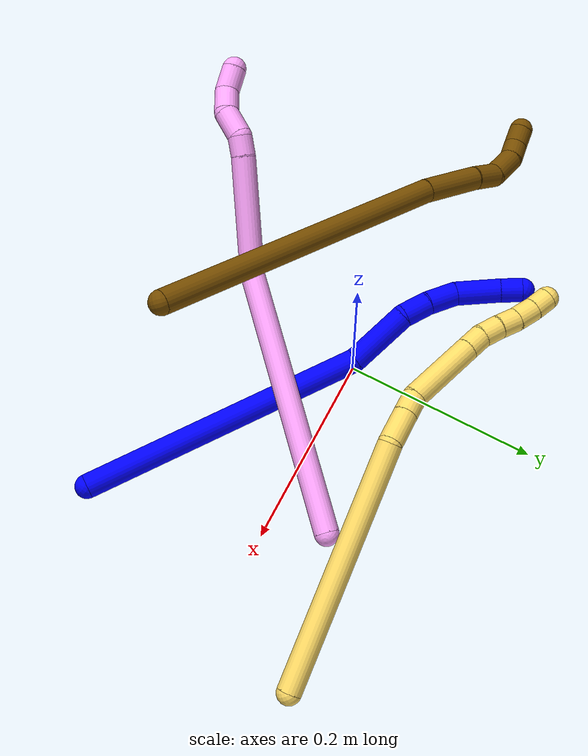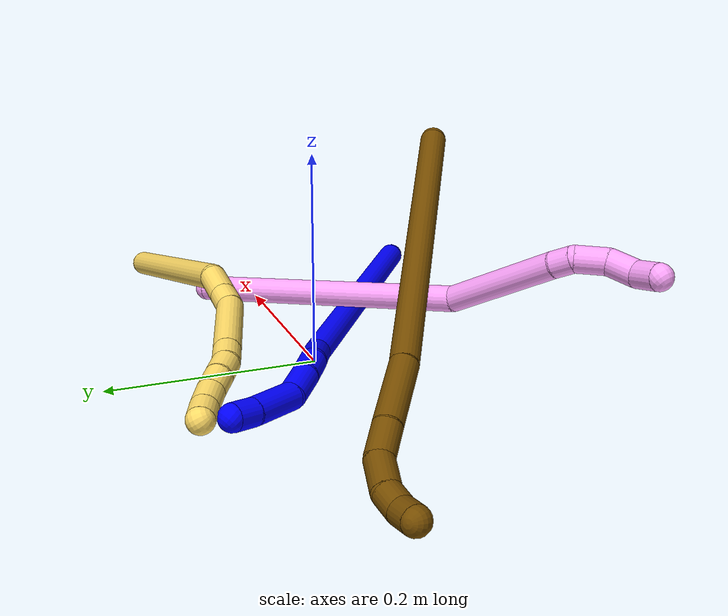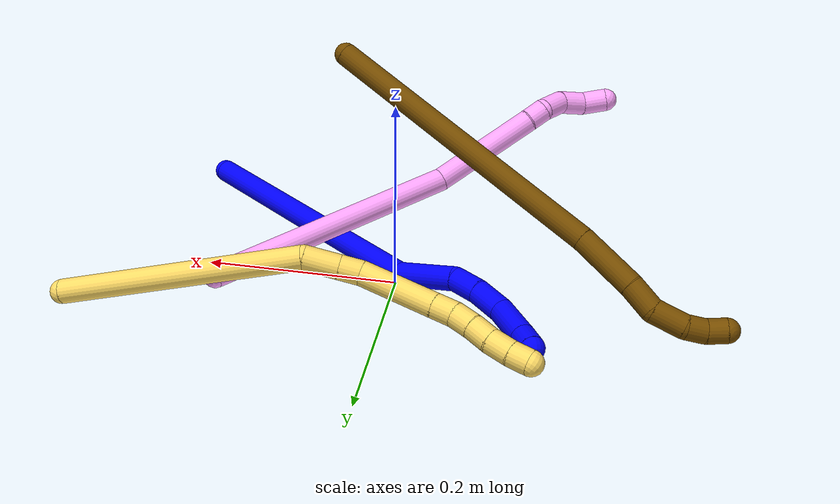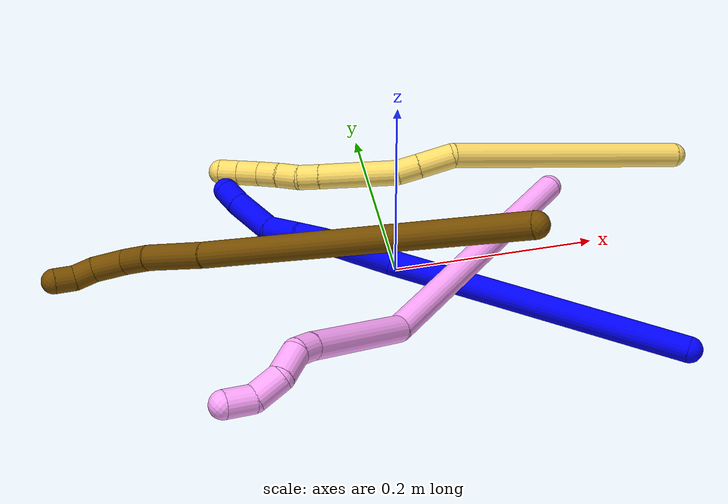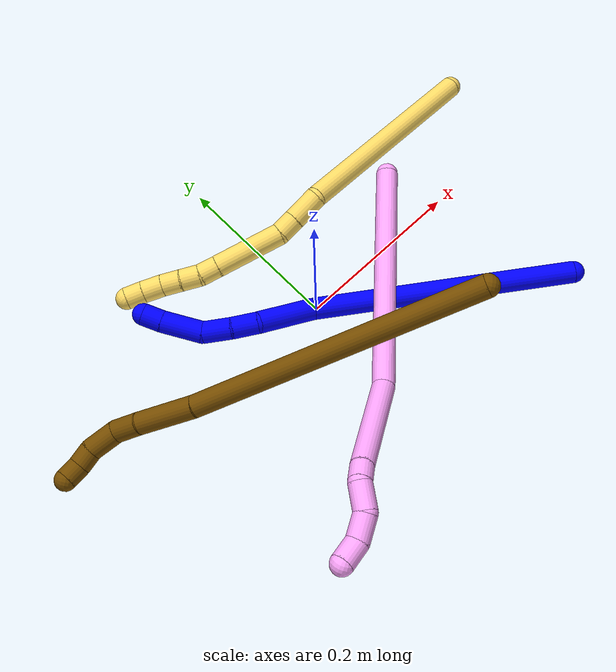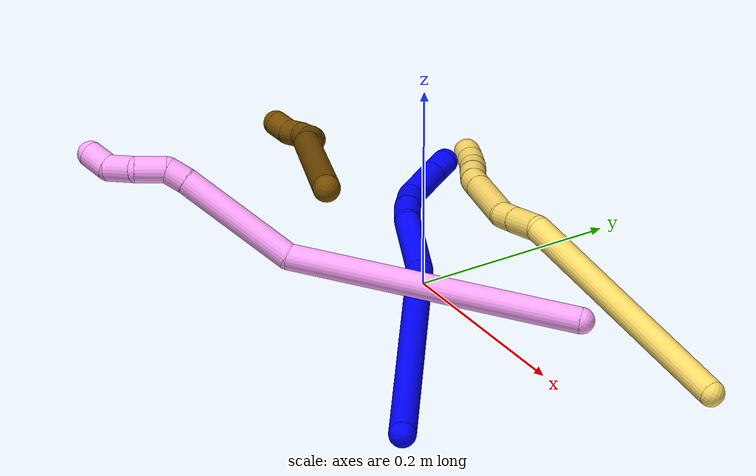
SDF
<sdf version="1.7">
 <world name="default">
  <model name="bin">
   <static>1</static>
   <link name="bottom">
    <collision name="collision-bottom">
     <pose>0 0 -0.01 0 -0 0</pose>
     <geometry><box><size>0.8 0.6 0.02</size></box></geometry>
     <surface>
      <friction><ode><mu>100</mu><mu2>100</mu2></ode></friction>
      <contact><collide_bitmask>65535</collide_bitmask></contact>
     </surface>
    </collision>
   </link>
   <link name="west_wall">
    <collision name="collision-west_wall">
     <pose>-0.41 0 0.1 0 -0 0</pose>
     <geometry><box><size>0.02 0.6 0.2</size></box></geometry>
     <surface>
      <friction><ode><mu>100</mu><mu2>100</mu2></ode></friction>
      <contact><collide_bitmask>65535</collide_bitmask></contact>
     </surface>
    </collision>
   </link>
   <link name="east_wall">
    <collision name="collision-east_wall">
     <pose>0.41 0 0.1 0 -0 0</pose>
     <geometry><box><size>0.02 0.6 0.2</size></box></geometry>
     <surface>
      <friction><ode><mu>100</mu><mu2>100</mu2></ode></friction>
      <contact><collide_bitmask>65535</collide_bitmask></contact>
     </surface>
    </collision>
   </link>
   <link name="south_wall">
    <collision name="collision-south_wall">
     <pose>0 -0.31 0.1 0 -0 0</pose>
     <geometry><box><size>0.8 0.02 0.2</size></box></geometry>
     <surface>
      <friction><ode><mu>100</mu><mu2>100</mu2></ode></friction>
      <contact><collide_bitmask>65535</collide_bitmask></contact>
     </surface>
    </collision>
   </link>
   <link name="north_wall">
    <collision name="collision-north_wall">
     <pose>0 0.31 0.1 0 -0 0</pose>
     <geometry><box><size>0.8 0.02 0.2</size></box></geometry>
     <surface>
      <friction><ode><mu>100</mu><mu2>100</mu2></ode></friction>
      <contact><collide_bitmask>65535</collide_bitmask></contact>
     </surface>
    </collision>
   </link>
  </model>
  <model name="1">
   <static>0</static>
   <link name="1">
    <collision name="collision-cylinder-e_1_1_4">
     <pose>-0.101539 0.06077 -0.092235 -2.55901 -0.743365 1.83029</pose>
     <geometry><cylinder><radius>0.0125</radius><length>0.300071</length></cylinder></geometry>
     <surface>
      <friction><ode><mu>1.16</mu><mu2>1.16</mu2><slip1>0</slip1><slip2>0</slip2></ode></friction>
      <contact><ode><kp>1e+06</kp><kd>1</kd><max_vel>0</max_vel><min_depth>0.001</min_depth></ode></contact>
     </surface>
    </collision>
    <visual name="visual-cylinder-e_1_1_4">
     <pose>-0.101539 0.06077 -0.092235 -2.55901 -0.743365 1.83029</pose>
     <geometry><cylinder><radius>0.0125</radius><length>0.300071</length></cylinder></geometry>
     <material><ambient>0 0 1 1</ambient></material>
    </visual>
    <collision name="collision-cylinder-e_2_4_5">
     <pose>-0.230904 0.138099 -0.194438 -2.11263 -0.963716 1.49313</pose>
     <geometry><cylinder><radius>0.0125</radius><length>0.067759</length></cylinder></geometry>
     <surface>
      <friction><ode><mu>1.16</mu><mu2>1.16</mu2><slip1>0</slip1><slip2>0</slip2></ode></friction>
      <contact><ode><kp>1e+06</kp><kd>1</kd><max_vel>0</max_vel><min_depth>0.001</min_depth></ode></contact>
     </surface>
    </collision>
    <visual name="visual-cylinder-e_2_4_5">
     <pose>-0.230904 0.138099 -0.194438 -2.11263 -0.963716 1.49313</pose>
     <geometry><cylinder><radius>0.0125</radius><length>0.067759</length></cylinder></geometry>
     <material><ambient>0 0 1 1</ambient></material>
    </visual>
    <collision name="collision-cylinder-e_3_5_6">
     <pose>-0.269127 0.159767 -0.2133 -2.6203 -0.792154 2.00609</pose>
     <geometry><cylinder><radius>0.0125</radius><length>0.029211</length></cylinder></geometry>
     <surface>
      <friction><ode><mu>1.16</mu><mu2>1.16</mu2><slip1>0</slip1><slip2>0</slip2></ode></friction>
      <contact><ode><kp>1e+06</kp><kd>1</kd><max_vel>0</max_vel><min_depth>0.001</min_depth></ode></contact>
     </surface>
    </collision>
    <visual name="visual-cylinder-e_3_5_6">
     <pose>-0.269127 0.159767 -0.2133 -2.6203 -0.792154 2.00609</pose>
     <geometry><cylinder><radius>0.0125</radius><length>0.029211</length></cylinder></geometry>
     <material><ambient>0 0 1 1</ambient></material>
    </visual>
    <collision name="collision-cylinder-e_4_6_7">
     <pose>-0.289685 0.169967 -0.234075 -2.73665 -0.666235 2.07067</pose>
     <geometry><cylinder><radius>0.0125</radius><length>0.032881</length></cylinder></geometry>
     <surface>
      <friction><ode><mu>1.16</mu><mu2>1.16</mu2><slip1>0</slip1><slip2>0</slip2></ode></friction>
      <contact><ode><kp>1e+06</kp><kd>1</kd><max_vel>0</max_vel><min_depth>0.001</min_depth></ode></contact>
     </surface>
    </collision>
    <visual name="visual-cylinder-e_4_6_7">
     <pose>-0.289685 0.169967 -0.234075 -2.73665 -0.666235 2.07067</pose>
     <geometry><cylinder><radius>0.0125</radius><length>0.032881</length></cylinder></geometry>
     <material><ambient>0 0 1 1</ambient></material>
    </visual>
    <collision name="collision-cylinder-e_5_7_8">
     <pose>-0.307754 0.18938 -0.263089 -2.44543 -0.340353 0.884564</pose>
     <geometry><cylinder><radius>0.0125</radius><length>0.047382</length></cylinder></geometry>
     <surface>
      <friction><ode><mu>1.16</mu><mu2>1.16</mu2><slip1>0</slip1><slip2>0</slip2></ode></friction>
      <contact><ode><kp>1e+06</kp><kd>1</kd><max_vel>0</max_vel><min_depth>0.001</min_depth></ode></contact>
     </surface>
    </collision>
    <visual name="visual-cylinder-e_5_7_8">
     <pose>-0.307754 0.18938 -0.263089 -2.44543 -0.340353 0.884564</pose>
     <geometry><cylinder><radius>0.0125</radius><length>0.047382</length></cylinder></geometry>
     <material><ambient>0 0 1 1</ambient></material>
    </visual>
    <collision name="collision-cylinder-e_6_8_2">
     <pose>-0.318612 0.211371 -0.288052 -2.36628 -0.262926 0.62635</pose>
     <geometry><cylinder><radius>0.0125</radius><length>0.022697</length></cylinder></geometry>
     <surface>
      <friction><ode><mu>1.16</mu><mu2>1.16</mu2><slip1>0</slip1><slip2>0</slip2></ode></friction>
      <contact><ode><kp>1e+06</kp><kd>1</kd><max_vel>0</max_vel><min_depth>0.001</min_depth></ode></contact>
     </surface>
    </collision>
    <visual name="visual-cylinder-e_6_8_2">
     <pose>-0.318612 0.211371 -0.288052 -2.36628 -0.262926 0.62635</pose>
     <geometry><cylinder><radius>0.0125</radius><length>0.022697</length></cylinder></geometry>
     <material><ambient>0 0 1 1</ambient></material>
    </visual>
    <collision name="collision-sphere-2">
     <pose>-0.321562 0.219041 -0.295878 0 -0 0</pose>
     <geometry><sphere><radius>0.0125</radius></sphere></geometry>
     <surface>
      <friction><ode><mu>1.16</mu><mu2>1.16</mu2><slip1>0</slip1><slip2>0</slip2></ode></friction>
      <contact><ode><kp>1e+06</kp><kd>1</kd><max_vel>0</max_vel><min_depth>0.001</min_depth></ode></contact>
     </surface>
    </collision>
    <visual name="visual-sphere-2">
     <pose>-0.321562 0.219041 -0.295878 0 -0 0</pose>
     <geometry><sphere><radius>0.0125</radius></sphere></geometry>
     <material><ambient>0 0 1 1</ambient></material>
    </visual>
    <collision name="collision-sphere-4">
     <pose>-0.203078 0.121541 -0.18447 0 -0 0</pose>
     <geometry><sphere><radius>0.0125</radius></sphere></geometry>
     <surface>
      <friction><ode><mu>1.16</mu><mu2>1.16</mu2><slip1>0</slip1><slip2>0</slip2></ode></friction>
      <contact><ode><kp>1e+06</kp><kd>1</kd><max_vel>0</max_vel><min_depth>0.001</min_depth></ode></contact>
     </surface>
    </collision>
    <visual name="visual-sphere-4">
     <pose>-0.203078 0.121541 -0.18447 0 -0 0</pose>
     <geometry><sphere><radius>0.0125</radius></sphere></geometry>
     <material><ambient>0 0 1 1</ambient></material>
    </visual>
    <collision name="collision-sphere-1">
     <geometry><sphere><radius>0.0125</radius></sphere></geometry>
     <surface>
      <friction><ode><mu>1.16</mu><mu2>1.16</mu2><slip1>0</slip1><slip2>0</slip2></ode></friction>
      <contact><ode><kp>1e+06</kp><kd>1</kd><max_vel>0</max_vel><min_depth>0.001</min_depth></ode></contact>
     </surface>
    </collision>
    <visual name="visual-sphere-1">
     <geometry><sphere><radius>0.0125</radius></sphere></geometry>
     <material><ambient>0 0 1 1</ambient></material>
    </visual>
    <collision name="collision-sphere-8">
     <pose>-0.315662 0.2037 -0.280225 0 -0 0</pose>
     <geometry><sphere><radius>0.0125</radius></sphere></geometry>
     <surface>
      <friction><ode><mu>1.16</mu><mu2>1.16</mu2><slip1>0</slip1><slip2>0</slip2></ode></friction>
      <contact><ode><kp>1e+06</kp><kd>1</kd><max_vel>0</max_vel><min_depth>0.001</min_depth></ode></contact>
     </surface>
    </collision>
    <visual name="visual-sphere-8">
     <pose>-0.315662 0.2037 -0.280225 0 -0 0</pose>
     <geometry><sphere><radius>0.0125</radius></sphere></geometry>
     <material><ambient>0 0 1 1</ambient></material>
    </visual>
    <collision name="collision-sphere-5">
     <pose>-0.25873 0.154658 -0.204405 0 -0 0</pose>
     <geometry><sphere><radius>0.0125</radius></sphere></geometry>
     <surface>
      <friction><ode><mu>1.16</mu><mu2>1.16</mu2><slip1>0</slip1><slip2>0</slip2></ode></friction>
      <contact><ode><kp>1e+06</kp><kd>1</kd><max_vel>0</max_vel><min_depth>0.001</min_depth></ode></contact>
     </surface>
    </collision>
    <visual name="visual-sphere-5">
     <pose>-0.25873 0.154658 -0.204405 0 -0 0</pose>
     <geometry><sphere><radius>0.0125</radius></sphere></geometry>
     <material><ambient>0 0 1 1</ambient></material>
    </visual>
    <collision name="collision-sphere-6">
     <pose>-0.279524 0.164875 -0.222195 0 -0 0</pose>
     <geometry><sphere><radius>0.0125</radius></sphere></geometry>
     <surface>
      <friction><ode><mu>1.16</mu><mu2>1.16</mu2><slip1>0</slip1><slip2>0</slip2></ode></friction>
      <contact><ode><kp>1e+06</kp><kd>1</kd><max_vel>0</max_vel><min_depth>0.001</min_depth></ode></contact>
     </surface>
    </collision>
    <visual name="visual-sphere-6">
     <pose>-0.279524 0.164875 -0.222195 0 -0 0</pose>
     <geometry><sphere><radius>0.0125</radius></sphere></geometry>
     <material><ambient>0 0 1 1</ambient></material>
    </visual>
    <collision name="collision-sphere-7">
     <pose>-0.299845 0.175059 -0.245954 0 -0 0</pose>
     <geometry><sphere><radius>0.0125</radius></sphere></geometry>
     <surface>
      <friction><ode><mu>1.16</mu><mu2>1.16</mu2><slip1>0</slip1><slip2>0</slip2></ode></friction>
      <contact><ode><kp>1e+06</kp><kd>1</kd><max_vel>0</max_vel><min_depth>0.001</min_depth></ode></contact>
     </surface>
    </collision>
    <visual name="visual-sphere-7">
     <pose>-0.299845 0.175059 -0.245954 0 -0 0</pose>
     <geometry><sphere><radius>0.0125</radius></sphere></geometry>
     <material><ambient>0 0 1 1</ambient></material>
    </visual>
    <inertial>
     <pose>-0.17063 0.103238 -0.147566 0 -0 0</pose>
     <mass>0.5</mass>
     <inertia><ixx>0.001194</ixx><ixy>0</ixy><ixz>0</ixz><iyy>0.002977</iyy><iyz>0</iyz><izz>0.0006</izz></inertia>
    </inertial>
   </link>
   <pose>0.239026 -0.174925 0.015236 0.89482 0.082635 0.203299</pose>
  </model>
  <model name="4">
   <static>0</static>
   <link name="4">
    <collision name="collision-cylinder-e_1_1_4">
     <pose>-0.076669 -0.07346 0.08881 0.691082 -0.586996 -0.216741</pose>
     <geometry><cylinder><radius>0.0125</radius><length>0.276851</length></cylinder></geometry>
     <surface>
      <friction><ode><mu>1.16</mu><mu2>1.16</mu2><slip1>0</slip1><slip2>0</slip2></ode></friction>
      <contact><ode><kp>1e+06</kp><kd>1</kd><max_vel>0</max_vel><min_depth>0.001</min_depth></ode></contact>
     </surface>
    </collision>
    <visual name="visual-cylinder-e_1_1_4">
     <pose>-0.076669 -0.07346 0.08881 0.691082 -0.586996 -0.216741</pose>
     <geometry><cylinder><radius>0.0125</radius><length>0.276851</length></cylinder></geometry>
     <material><ambient>1 0.65098 0.996078 1</ambient></material>
    </visual>
    <collision name="collision-cylinder-e_2_4_5">
     <pose>-0.177524 -0.195667 0.200281 1.13564 -0.422791 -0.272096</pose>
     <geometry><cylinder><radius>0.0125</radius><length>0.117896</length></cylinder></geometry>
     <surface>
      <friction><ode><mu>1.16</mu><mu2>1.16</mu2><slip1>0</slip1><slip2>0</slip2></ode></friction>
      <contact><ode><kp>1e+06</kp><kd>1</kd><max_vel>0</max_vel><min_depth>0.001</min_depth></ode></contact>
     </surface>
    </collision>
    <visual name="visual-cylinder-e_2_4_5">
     <pose>-0.177524 -0.195667 0.200281 1.13564 -0.422791 -0.272096</pose>
     <geometry><cylinder><radius>0.0125</radius><length>0.117896</length></cylinder></geometry>
     <material><ambient>1 0.65098 0.996078 1</ambient></material>
    </visual>
    <collision name="collision-cylinder-e_3_5_6">
     <pose>-0.206815 -0.252189 0.227202 1.06961 -0.522432 -0.314113</pose>
     <geometry><cylinder><radius>0.0125</radius><length>0.02046</length></cylinder></geometry>
     <surface>
      <friction><ode><mu>1.16</mu><mu2>1.16</mu2><slip1>0</slip1><slip2>0</slip2></ode></friction>
      <contact><ode><kp>1e+06</kp><kd>1</kd><max_vel>0</max_vel><min_depth>0.001</min_depth></ode></contact>
     </surface>
    </collision>
    <visual name="visual-cylinder-e_3_5_6">
     <pose>-0.206815 -0.252189 0.227202 1.06961 -0.522432 -0.314113</pose>
     <geometry><cylinder><radius>0.0125</radius><length>0.02046</length></cylinder></geometry>
     <material><ambient>1 0.65098 0.996078 1</ambient></material>
    </visual>
    <collision name="collision-cylinder-e_4_6_7">
     <pose>-0.222291 -0.264994 0.241029 0.48404 -0.764705 -0.197896</pose>
     <geometry><cylinder><radius>0.0125</radius><length>0.02996</length></cylinder></geometry>
     <surface>
      <friction><ode><mu>1.16</mu><mu2>1.16</mu2><slip1>0</slip1><slip2>0</slip2></ode></friction>
      <contact><ode><kp>1e+06</kp><kd>1</kd><max_vel>0</max_vel><min_depth>0.001</min_depth></ode></contact>
     </surface>
    </collision>
    <visual name="visual-cylinder-e_4_6_7">
     <pose>-0.222291 -0.264994 0.241029 0.48404 -0.764705 -0.197896</pose>
     <geometry><cylinder><radius>0.0125</radius><length>0.02996</length></cylinder></geometry>
     <material><ambient>1 0.65098 0.996078 1</ambient></material>
    </visual>
    <collision name="collision-cylinder-e_5_7_8">
     <pose>-0.236517 -0.27577 0.263076 0.431485 -0.273532 -0.060304</pose>
     <geometry><cylinder><radius>0.0125</radius><length>0.028538</length></cylinder></geometry>
     <surface>
      <friction><ode><mu>1.16</mu><mu2>1.16</mu2><slip1>0</slip1><slip2>0</slip2></ode></friction>
      <contact><ode><kp>1e+06</kp><kd>1</kd><max_vel>0</max_vel><min_depth>0.001</min_depth></ode></contact>
     </surface>
    </collision>
    <visual name="visual-cylinder-e_5_7_8">
     <pose>-0.236517 -0.27577 0.263076 0.431485 -0.273532 -0.060304</pose>
     <geometry><cylinder><radius>0.0125</radius><length>0.028538</length></cylinder></geometry>
     <material><ambient>1 0.65098 0.996078 1</ambient></material>
    </visual>
    <collision name="collision-cylinder-e_6_8_2">
     <pose>-0.240974 -0.291535 0.284048 0.867635 -0.045869 -0.021252</pose>
     <geometry><cylinder><radius>0.0125</radius><length>0.026296</length></cylinder></geometry>
     <surface>
      <friction><ode><mu>1.16</mu><mu2>1.16</mu2><slip1>0</slip1><slip2>0</slip2></ode></friction>
      <contact><ode><kp>1e+06</kp><kd>1</kd><max_vel>0</max_vel><min_depth>0.001</min_depth></ode></contact>
     </surface>
    </collision>
    <visual name="visual-cylinder-e_6_8_2">
     <pose>-0.240974 -0.291535 0.284048 0.867635 -0.045869 -0.021252</pose>
     <geometry><cylinder><radius>0.0125</radius><length>0.026296</length></cylinder></geometry>
     <material><ambient>1 0.65098 0.996078 1</ambient></material>
    </visual>
    <collision name="collision-sphere-2">
     <pose>-0.241577 -0.301553 0.292541 0 -0 0</pose>
     <geometry><sphere><radius>0.0125</radius></sphere></geometry>
     <surface>
      <friction><ode><mu>1.16</mu><mu2>1.16</mu2><slip1>0</slip1><slip2>0</slip2></ode></friction>
      <contact><ode><kp>1e+06</kp><kd>1</kd><max_vel>0</max_vel><min_depth>0.001</min_depth></ode></contact>
     </surface>
    </collision>
    <visual name="visual-sphere-2">
     <pose>-0.241577 -0.301553 0.292541 0 -0 0</pose>
     <geometry><sphere><radius>0.0125</radius></sphere></geometry>
     <material><ambient>1 0.65098 0.996078 1</ambient></material>
    </visual>
    <collision name="collision-sphere-4">
     <pose>-0.153337 -0.146919 0.17762 0 -0 0</pose>
     <geometry><sphere><radius>0.0125</radius></sphere></geometry>
     <surface>
      <friction><ode><mu>1.16</mu><mu2>1.16</mu2><slip1>0</slip1><slip2>0</slip2></ode></friction>
      <contact><ode><kp>1e+06</kp><kd>1</kd><max_vel>0</max_vel><min_depth>0.001</min_depth></ode></contact>
     </surface>
    </collision>
    <visual name="visual-sphere-4">
     <pose>-0.153337 -0.146919 0.17762 0 -0 0</pose>
     <geometry><sphere><radius>0.0125</radius></sphere></geometry>
     <material><ambient>1 0.65098 0.996078 1</ambient></material>
    </visual>
    <collision name="collision-sphere-1">
     <geometry><sphere><radius>0.0125</radius></sphere></geometry>
     <surface>
      <friction><ode><mu>1.16</mu><mu2>1.16</mu2><slip1>0</slip1><slip2>0</slip2></ode></friction>
      <contact><ode><kp>1e+06</kp><kd>1</kd><max_vel>0</max_vel><min_depth>0.001</min_depth></ode></contact>
     </surface>
    </collision>
    <visual name="visual-sphere-1">
     <geometry><sphere><radius>0.0125</radius></sphere></geometry>
     <material><ambient>1 0.65098 0.996078 1</ambient></material>
    </visual>
    <collision name="collision-sphere-8">
     <pose>-0.240371 -0.281516 0.275555 0 -0 0</pose>
     <geometry><sphere><radius>0.0125</radius></sphere></geometry>
     <surface>
      <friction><ode><mu>1.16</mu><mu2>1.16</mu2><slip1>0</slip1><slip2>0</slip2></ode></friction>
      <contact><ode><kp>1e+06</kp><kd>1</kd><max_vel>0</max_vel><min_depth>0.001</min_depth></ode></contact>
     </surface>
    </collision>
    <visual name="visual-sphere-8">
     <pose>-0.240371 -0.281516 0.275555 0 -0 0</pose>
     <geometry><sphere><radius>0.0125</radius></sphere></geometry>
     <material><ambient>1 0.65098 0.996078 1</ambient></material>
    </visual>
    <collision name="collision-sphere-5">
     <pose>-0.201711 -0.244414 0.222943 0 -0 0</pose>
     <geometry><sphere><radius>0.0125</radius></sphere></geometry>
     <surface>
      <friction><ode><mu>1.16</mu><mu2>1.16</mu2><slip1>0</slip1><slip2>0</slip2></ode></friction>
      <contact><ode><kp>1e+06</kp><kd>1</kd><max_vel>0</max_vel><min_depth>0.001</min_depth></ode></contact>
     </surface>
    </collision>
    <visual name="visual-sphere-5">
     <pose>-0.201711 -0.244414 0.222943 0 -0 0</pose>
     <geometry><sphere><radius>0.0125</radius></sphere></geometry>
     <material><ambient>1 0.65098 0.996078 1</ambient></material>
    </visual>
    <collision name="collision-sphere-6">
     <pose>-0.21192 -0.259964 0.231462 0 -0 0</pose>
     <geometry><sphere><radius>0.0125</radius></sphere></geometry>
     <surface>
      <friction><ode><mu>1.16</mu><mu2>1.16</mu2><slip1>0</slip1><slip2>0</slip2></ode></friction>
      <contact><ode><kp>1e+06</kp><kd>1</kd><max_vel>0</max_vel><min_depth>0.001</min_depth></ode></contact>
     </surface>
    </collision>
    <visual name="visual-sphere-6">
     <pose>-0.21192 -0.259964 0.231462 0 -0 0</pose>
     <geometry><sphere><radius>0.0125</radius></sphere></geometry>
     <material><ambient>1 0.65098 0.996078 1</ambient></material>
    </visual>
    <collision name="collision-sphere-7">
     <pose>-0.232662 -0.270025 0.250597 0 -0 0</pose>
     <geometry><sphere><radius>0.0125</radius></sphere></geometry>
     <surface>
      <friction><ode><mu>1.16</mu><mu2>1.16</mu2><slip1>0</slip1><slip2>0</slip2></ode></friction>
      <contact><ode><kp>1e+06</kp><kd>1</kd><max_vel>0</max_vel><min_depth>0.001</min_depth></ode></contact>
     </surface>
    </collision>
    <visual name="visual-sphere-7">
     <pose>-0.232662 -0.270025 0.250597 0 -0 0</pose>
     <geometry><sphere><radius>0.0125</radius></sphere></geometry>
     <material><ambient>1 0.65098 0.996078 1</ambient></material>
    </visual>
    <inertial>
     <pose>-0.132265 -0.144081 0.150092 0 -0 0</pose>
     <mass>0.5</mass>
     <inertia>
      <ixx>0.001207</ixx>
      <ixy>0</ixy>
      <ixz>0</ixz>
      <iyy>0.001176</iyy>
      <iyz>0</iyz>
      <izz>0.002137</izz>
     </inertia>
    </inertial>
   </link>
   <pose>0.172607 0.059567 0.025486 -2.26583 0.201358 1.75672</pose>
  </model>
  <model name="5">
   <static>0</static>
   <link name="5">
    <collision name="collision-cylinder-e_1_1_4">
     <pose>-0.101688 0.024314 -0.07284 -2.81942 -0.924001 2.51072</pose>
     <geometry><cylinder><radius>0.0125</radius><length>0.25485</length></cylinder></geometry>
     <surface>
      <friction><ode><mu>1.16</mu><mu2>1.16</mu2><slip1>0</slip1><slip2>0</slip2></ode></friction>
      <contact><ode><kp>1e+06</kp><kd>1</kd><max_vel>0</max_vel><min_depth>0.001</min_depth></ode></contact>
     </surface>
    </collision>
    <visual name="visual-cylinder-e_1_1_4">
     <pose>-0.101688 0.024314 -0.07284 -2.81942 -0.924001 2.51072</pose>
     <geometry><cylinder><radius>0.0125</radius><length>0.25485</length></cylinder></geometry>
     <material><ambient>1 0.858824 0.4 1</ambient></material>
    </visual>
    <collision name="collision-cylinder-e_2_4_5">
     <pose>-0.217548 0.058094 -0.15109 -2.0901 -0.915032 1.40733</pose>
     <geometry><cylinder><radius>0.0125</radius><length>0.035763</length></cylinder></geometry>
     <surface>
      <friction><ode><mu>1.16</mu><mu2>1.16</mu2><slip1>0</slip1><slip2>0</slip2></ode></friction>
      <contact><ode><kp>1e+06</kp><kd>1</kd><max_vel>0</max_vel><min_depth>0.001</min_depth></ode></contact>
     </surface>
    </collision>
    <visual name="visual-cylinder-e_2_4_5">
     <pose>-0.217548 0.058094 -0.15109 -2.0901 -0.915032 1.40733</pose>
     <geometry><cylinder><radius>0.0125</radius><length>0.035763</length></cylinder></geometry>
     <material><ambient>1 0.858824 0.4 1</ambient></material>
    </visual>
    <collision name="collision-cylinder-e_3_5_6">
     <pose>-0.240724 0.0734 -0.159893 -2.097 -0.927216 1.43033</pose>
     <geometry><cylinder><radius>0.0125</radius><length>0.022508</length></cylinder></geometry>
     <surface>
      <friction><ode><mu>1.16</mu><mu2>1.16</mu2><slip1>0</slip1><slip2>0</slip2></ode></friction>
      <contact><ode><kp>1e+06</kp><kd>1</kd><max_vel>0</max_vel><min_depth>0.001</min_depth></ode></contact>
     </surface>
    </collision>
    <visual name="visual-cylinder-e_3_5_6">
     <pose>-0.240724 0.0734 -0.159893 -2.097 -0.927216 1.43033</pose>
     <geometry><cylinder><radius>0.0125</radius><length>0.022508</length></cylinder></geometry>
     <material><ambient>1 0.858824 0.4 1</ambient></material>
    </visual>
    <collision name="collision-cylinder-e_4_6_7">
     <pose>-0.286568 0.092625 -0.166421 -1.80092 -1.21364 1.43837</pose>
     <geometry><cylinder><radius>0.0125</radius><length>0.078646</length></cylinder></geometry>
     <surface>
      <friction><ode><mu>1.16</mu><mu2>1.16</mu2><slip1>0</slip1><slip2>0</slip2></ode></friction>
      <contact><ode><kp>1e+06</kp><kd>1</kd><max_vel>0</max_vel><min_depth>0.001</min_depth></ode></contact>
     </surface>
    </collision>
    <visual name="visual-cylinder-e_4_6_7">
     <pose>-0.286568 0.092625 -0.166421 -1.80092 -1.21364 1.43837</pose>
     <geometry><cylinder><radius>0.0125</radius><length>0.078646</length></cylinder></geometry>
     <material><ambient>1 0.858824 0.4 1</ambient></material>
    </visual>
    <collision name="collision-cylinder-e_5_7_8">
     <pose>-0.333503 0.109555 -0.170435 -1.81375 -1.22368 1.46209</pose>
     <geometry><cylinder><radius>0.0125</radius><length>0.021468</length></cylinder></geometry>
     <surface>
      <friction><ode><mu>1.16</mu><mu2>1.16</mu2><slip1>0</slip1><slip2>0</slip2></ode></friction>
      <contact><ode><kp>1e+06</kp><kd>1</kd><max_vel>0</max_vel><min_depth>0.001</min_depth></ode></contact>
     </surface>
    </collision>
    <visual name="visual-cylinder-e_5_7_8">
     <pose>-0.333503 0.109555 -0.170435 -1.81375 -1.22368 1.46209</pose>
     <geometry><cylinder><radius>0.0125</radius><length>0.021468</length></cylinder></geometry>
     <material><ambient>1 0.858824 0.4 1</ambient></material>
    </visual>
    <collision name="collision-cylinder-e_6_8_9">
     <pose>-0.354157 0.115382 -0.169996 -1.04719 -1.3261 0.847221</pose>
     <geometry><cylinder><radius>0.0125</radius><length>0.021768</length></cylinder></geometry>
     <surface>
      <friction><ode><mu>1.16</mu><mu2>1.16</mu2><slip1>0</slip1><slip2>0</slip2></ode></friction>
      <contact><ode><kp>1e+06</kp><kd>1</kd><max_vel>0</max_vel><min_depth>0.001</min_depth></ode></contact>
     </surface>
    </collision>
    <visual name="visual-cylinder-e_6_8_9">
     <pose>-0.354157 0.115382 -0.169996 -1.04719 -1.3261 0.847221</pose>
     <geometry><cylinder><radius>0.0125</radius><length>0.021768</length></cylinder></geometry>
     <material><ambient>1 0.858824 0.4 1</ambient></material>
    </visual>
    <collision name="collision-cylinder-e_7_9_10">
     <pose>-0.375034 0.120441 -0.16659 -0.926039 -1.24614 0.688829</pose>
     <geometry><cylinder><radius>0.0125</radius><length>0.021774</length></cylinder></geometry>
     <surface>
      <friction><ode><mu>1.16</mu><mu2>1.16</mu2><slip1>0</slip1><slip2>0</slip2></ode></friction>
      <contact><ode><kp>1e+06</kp><kd>1</kd><max_vel>0</max_vel><min_depth>0.001</min_depth></ode></contact>
     </surface>
    </collision>
    <visual name="visual-cylinder-e_7_9_10">
     <pose>-0.375034 0.120441 -0.16659 -0.926039 -1.24614 0.688829</pose>
     <geometry><cylinder><radius>0.0125</radius><length>0.021774</length></cylinder></geometry>
     <material><ambient>1 0.858824 0.4 1</ambient></material>
    </visual>
    <collision name="collision-cylinder-e_8_10_11">
     <pose>-0.396531 0.126219 -0.163673 -1.30121 -1.29905 1.04828</pose>
     <geometry><cylinder><radius>0.0125</radius><length>0.023208</length></cylinder></geometry>
     <surface>
      <friction><ode><mu>1.16</mu><mu2>1.16</mu2><slip1>0</slip1><slip2>0</slip2></ode></friction>
      <contact><ode><kp>1e+06</kp><kd>1</kd><max_vel>0</max_vel><min_depth>0.001</min_depth></ode></contact>
     </surface>
    </collision>
    <visual name="visual-cylinder-e_8_10_11">
     <pose>-0.396531 0.126219 -0.163673 -1.30121 -1.29905 1.04828</pose>
     <geometry><cylinder><radius>0.0125</radius><length>0.023208</length></cylinder></geometry>
     <material><ambient>1 0.858824 0.4 1</ambient></material>
    </visual>
    <collision name="collision-cylinder-e_9_11_2">
     <pose>-0.417395 0.131721 -0.16313 -1.68473 -1.31662 1.4285</pose>
     <geometry><cylinder><radius>0.0125</radius><length>0.020015</length></cylinder></geometry>
     <surface>
      <friction><ode><mu>1.16</mu><mu2>1.16</mu2><slip1>0</slip1><slip2>0</slip2></ode></friction>
      <contact><ode><kp>1e+06</kp><kd>1</kd><max_vel>0</max_vel><min_depth>0.001</min_depth></ode></contact>
     </surface>
    </collision>
    <visual name="visual-cylinder-e_9_11_2">
     <pose>-0.417395 0.131721 -0.16313 -1.68473 -1.31662 1.4285</pose>
     <geometry><cylinder><radius>0.0125</radius><length>0.020015</length></cylinder></geometry>
     <material><ambient>1 0.858824 0.4 1</ambient></material>
    </visual>
    <collision name="collision-sphere-2">
     <pose>-0.42708 0.134221 -0.163416 0 -0 0</pose>
     <geometry><sphere><radius>0.0125</radius></sphere></geometry>
     <surface>
      <friction><ode><mu>1.16</mu><mu2>1.16</mu2><slip1>0</slip1><slip2>0</slip2></ode></friction>
      <contact><ode><kp>1e+06</kp><kd>1</kd><max_vel>0</max_vel><min_depth>0.001</min_depth></ode></contact>
     </surface>
    </collision>
    <visual name="visual-sphere-2">
     <pose>-0.42708 0.134221 -0.163416 0 -0 0</pose>
     <geometry><sphere><radius>0.0125</radius></sphere></geometry>
     <material><ambient>1 0.858824 0.4 1</ambient></material>
    </visual>
    <collision name="collision-sphere-11">
     <pose>-0.407709 0.129221 -0.162844 0 -0 0</pose>
     <geometry><sphere><radius>0.0125</radius></sphere></geometry>
     <surface>
      <friction><ode><mu>1.16</mu><mu2>1.16</mu2><slip1>0</slip1><slip2>0</slip2></ode></friction>
      <contact><ode><kp>1e+06</kp><kd>1</kd><max_vel>0</max_vel><min_depth>0.001</min_depth></ode></contact>
     </surface>
    </collision>
    <visual name="visual-sphere-11">
     <pose>-0.407709 0.129221 -0.162844 0 -0 0</pose>
     <geometry><sphere><radius>0.0125</radius></sphere></geometry>
     <material><ambient>1 0.858824 0.4 1</ambient></material>
    </visual>
    <collision name="collision-sphere-10">
     <pose>-0.385352 0.123217 -0.164503 0 -0 0</pose>
     <geometry><sphere><radius>0.0125</radius></sphere></geometry>
     <surface>
      <friction><ode><mu>1.16</mu><mu2>1.16</mu2><slip1>0</slip1><slip2>0</slip2></ode></friction>
      <contact><ode><kp>1e+06</kp><kd>1</kd><max_vel>0</max_vel><min_depth>0.001</min_depth></ode></contact>
     </surface>
    </collision>
    <visual name="visual-sphere-10">
     <pose>-0.385352 0.123217 -0.164503 0 -0 0</pose>
     <geometry><sphere><radius>0.0125</radius></sphere></geometry>
     <material><ambient>1 0.858824 0.4 1</ambient></material>
    </visual>
    <collision name="collision-sphere-9">
     <pose>-0.364716 0.117666 -0.168677 0 -0 0</pose>
     <geometry><sphere><radius>0.0125</radius></sphere></geometry>
     <surface>
      <friction><ode><mu>1.16</mu><mu2>1.16</mu2><slip1>0</slip1><slip2>0</slip2></ode></friction>
      <contact><ode><kp>1e+06</kp><kd>1</kd><max_vel>0</max_vel><min_depth>0.001</min_depth></ode></contact>
     </surface>
    </collision>
    <visual name="visual-sphere-9">
     <pose>-0.364716 0.117666 -0.168677 0 -0 0</pose>
     <geometry><sphere><radius>0.0125</radius></sphere></geometry>
     <material><ambient>1 0.858824 0.4 1</ambient></material>
    </visual>
    <collision name="collision-sphere-4">
     <pose>-0.203375 0.048628 -0.145679 0 -0 0</pose>
     <geometry><sphere><radius>0.0125</radius></sphere></geometry>
     <surface>
      <friction><ode><mu>1.16</mu><mu2>1.16</mu2><slip1>0</slip1><slip2>0</slip2></ode></friction>
      <contact><ode><kp>1e+06</kp><kd>1</kd><max_vel>0</max_vel><min_depth>0.001</min_depth></ode></contact>
     </surface>
    </collision>
    <visual name="visual-sphere-4">
     <pose>-0.203375 0.048628 -0.145679 0 -0 0</pose>
     <geometry><sphere><radius>0.0125</radius></sphere></geometry>
     <material><ambient>1 0.858824 0.4 1</ambient></material>
    </visual>
    <collision name="collision-sphere-1">
     <geometry><sphere><radius>0.0125</radius></sphere></geometry>
     <surface>
      <friction><ode><mu>1.16</mu><mu2>1.16</mu2><slip1>0</slip1><slip2>0</slip2></ode></friction>
      <contact><ode><kp>1e+06</kp><kd>1</kd><max_vel>0</max_vel><min_depth>0.001</min_depth></ode></contact>
     </surface>
    </collision>
    <visual name="visual-sphere-1">
     <geometry><sphere><radius>0.0125</radius></sphere></geometry>
     <material><ambient>1 0.858824 0.4 1</ambient></material>
    </visual>
    <collision name="collision-sphere-8">
     <pose>-0.343597 0.113099 -0.171314 0 -0 0</pose>
     <geometry><sphere><radius>0.0125</radius></sphere></geometry>
     <surface>
      <friction><ode><mu>1.16</mu><mu2>1.16</mu2><slip1>0</slip1><slip2>0</slip2></ode></friction>
      <contact><ode><kp>1e+06</kp><kd>1</kd><max_vel>0</max_vel><min_depth>0.001</min_depth></ode></contact>
     </surface>
    </collision>
    <visual name="visual-sphere-8">
     <pose>-0.343597 0.113099 -0.171314 0 -0 0</pose>
     <geometry><sphere><radius>0.0125</radius></sphere></geometry>
     <material><ambient>1 0.858824 0.4 1</ambient></material>
    </visual>
    <collision name="collision-sphere-5">
     <pose>-0.231721 0.06756 -0.156502 0 -0 0</pose>
     <geometry><sphere><radius>0.0125</radius></sphere></geometry>
     <surface>
      <friction><ode><mu>1.16</mu><mu2>1.16</mu2><slip1>0</slip1><slip2>0</slip2></ode></friction>
      <contact><ode><kp>1e+06</kp><kd>1</kd><max_vel>0</max_vel><min_depth>0.001</min_depth></ode></contact>
     </surface>
    </collision>
    <visual name="visual-sphere-5">
     <pose>-0.231721 0.06756 -0.156502 0 -0 0</pose>
     <geometry><sphere><radius>0.0125</radius></sphere></geometry>
     <material><ambient>1 0.858824 0.4 1</ambient></material>
    </visual>
    <collision name="collision-sphere-6">
     <pose>-0.249726 0.079239 -0.163285 0 -0 0</pose>
     <geometry><sphere><radius>0.0125</radius></sphere></geometry>
     <surface>
      <friction><ode><mu>1.16</mu><mu2>1.16</mu2><slip1>0</slip1><slip2>0</slip2></ode></friction>
      <contact><ode><kp>1e+06</kp><kd>1</kd><max_vel>0</max_vel><min_depth>0.001</min_depth></ode></contact>
     </surface>
    </collision>
    <visual name="visual-sphere-6">
     <pose>-0.249726 0.079239 -0.163285 0 -0 0</pose>
     <geometry><sphere><radius>0.0125</radius></sphere></geometry>
     <material><ambient>1 0.858824 0.4 1</ambient></material>
    </visual>
    <collision name="collision-sphere-7">
     <pose>-0.323409 0.10601 -0.169557 0 -0 0</pose>
     <geometry><sphere><radius>0.0125</radius></sphere></geometry>
     <surface>
      <friction><ode><mu>1.16</mu><mu2>1.16</mu2><slip1>0</slip1><slip2>0</slip2></ode></friction>
      <contact><ode><kp>1e+06</kp><kd>1</kd><max_vel>0</max_vel><min_depth>0.001</min_depth></ode></contact>
     </surface>
    </collision>
    <visual name="visual-sphere-7">
     <pose>-0.323409 0.10601 -0.169557 0 -0 0</pose>
     <geometry><sphere><radius>0.0125</radius></sphere></geometry>
     <material><ambient>1 0.858824 0.4 1</ambient></material>
    </visual>
    <inertial>
     <pose>-0.204485 0.060525 -0.117408 0 -0 0</pose>
     <mass>0.5</mass>
     <inertia>
      <ixx>-0.00019</ixx>
      <ixy>0</ixy>
      <ixz>0</ixz>
      <iyy>0.001847</iyy>
      <iyz>0</iyz>
      <izz>0.000865</izz>
     </inertia>
    </inertial>
   </link>
   <pose>0.322005 0.09752 0.011892 -2.14623 0.099308 -0.560433</pose>
  </model>
  <model name="12">
   <static>0</static>
   <link name="12">
    <collision name="collision-cylinder-e_1_1_4">
     <pose>-0.08046 0.075019 -0.121691 -2.58915 -0.512642 1.49245</pose>
     <geometry><cylinder><radius>0.0125</radius><length>0.328087</length></cylinder></geometry>
     <surface>
      <friction><ode><mu>1.16</mu><mu2>1.16</mu2><slip1>0</slip1><slip2>0</slip2></ode></friction>
      <contact><ode><kp>1e+06</kp><kd>1</kd><max_vel>0</max_vel><min_depth>0.001</min_depth></ode></contact>
     </surface>
    </collision>
    <visual name="visual-cylinder-e_1_1_4">
     <pose>-0.08046 0.075019 -0.121691 -2.58915 -0.512642 1.49245</pose>
     <geometry><cylinder><radius>0.0125</radius><length>0.328087</length></cylinder></geometry>
     <material><ambient>0.466667 0.301961 0 1</ambient></material>
    </visual>
    <collision name="collision-cylinder-e_2_4_5">
     <pose>-0.178996 0.161959 -0.26827 -2.6949 -0.579863 1.84015</pose>
     <geometry><cylinder><radius>0.0125</radius><length>0.065978</length></cylinder></geometry>
     <surface>
      <friction><ode><mu>1.16</mu><mu2>1.16</mu2><slip1>0</slip1><slip2>0</slip2></ode></friction>
      <contact><ode><kp>1e+06</kp><kd>1</kd><max_vel>0</max_vel><min_depth>0.001</min_depth></ode></contact>
     </surface>
    </collision>
    <visual name="visual-cylinder-e_2_4_5">
     <pose>-0.178996 0.161959 -0.26827 -2.6949 -0.579863 1.84015</pose>
     <geometry><cylinder><radius>0.0125</radius><length>0.065978</length></cylinder></geometry>
     <material><ambient>0.466667 0.301961 0 1</ambient></material>
    </visual>
    <collision name="collision-cylinder-e_3_5_6">
     <pose>-0.207131 0.17923 -0.303742 -2.67362 -0.703546 1.98969</pose>
     <geometry><cylinder><radius>0.0125</radius><length>0.031102</length></cylinder></geometry>
     <surface>
      <friction><ode><mu>1.16</mu><mu2>1.16</mu2><slip1>0</slip1><slip2>0</slip2></ode></friction>
      <contact><ode><kp>1e+06</kp><kd>1</kd><max_vel>0</max_vel><min_depth>0.001</min_depth></ode></contact>
     </surface>
    </collision>
    <visual name="visual-cylinder-e_3_5_6">
     <pose>-0.207131 0.17923 -0.303742 -2.67362 -0.703546 1.98969</pose>
     <geometry><cylinder><radius>0.0125</radius><length>0.031102</length></cylinder></geometry>
     <material><ambient>0.466667 0.301961 0 1</ambient></material>
    </visual>
    <collision name="collision-cylinder-e_4_6_7">
     <pose>-0.223524 0.196024 -0.324951 -2.31906 -0.385233 0.841017</pose>
     <geometry><cylinder><radius>0.0125</radius><length>0.033705</length></cylinder></geometry>
     <surface>
      <friction><ode><mu>1.16</mu><mu2>1.16</mu2><slip1>0</slip1><slip2>0</slip2></ode></friction>
      <contact><ode><kp>1e+06</kp><kd>1</kd><max_vel>0</max_vel><min_depth>0.001</min_depth></ode></contact>
     </surface>
    </collision>
    <visual name="visual-cylinder-e_4_6_7">
     <pose>-0.223524 0.196024 -0.324951 -2.31906 -0.385233 0.841017</pose>
     <geometry><cylinder><radius>0.0125</radius><length>0.033705</length></cylinder></geometry>
     <material><ambient>0.466667 0.301961 0 1</ambient></material>
    </visual>
    <collision name="collision-cylinder-e_5_7_8">
     <pose>-0.231976 0.216784 -0.339873 -2.00297 -0.203737 0.316772</pose>
     <geometry><cylinder><radius>0.0125</radius><length>0.020948</length></cylinder></geometry>
     <surface>
      <friction><ode><mu>1.16</mu><mu2>1.16</mu2><slip1>0</slip1><slip2>0</slip2></ode></friction>
      <contact><ode><kp>1e+06</kp><kd>1</kd><max_vel>0</max_vel><min_depth>0.001</min_depth></ode></contact>
     </surface>
    </collision>
    <visual name="visual-cylinder-e_5_7_8">
     <pose>-0.231976 0.216784 -0.339873 -2.00297 -0.203737 0.316772</pose>
     <geometry><cylinder><radius>0.0125</radius><length>0.020948</length></cylinder></geometry>
     <material><ambient>0.466667 0.301961 0 1</ambient></material>
    </visual>
    <collision name="collision-cylinder-e_6_8_2">
     <pose>-0.233093 0.234609 -0.349495 -2.13 0.099481 -0.179282</pose>
     <geometry><cylinder><radius>0.0125</radius><length>0.02018</length></cylinder></geometry>
     <surface>
      <friction><ode><mu>1.16</mu><mu2>1.16</mu2><slip1>0</slip1><slip2>0</slip2></ode></friction>
      <contact><ode><kp>1e+06</kp><kd>1</kd><max_vel>0</max_vel><min_depth>0.001</min_depth></ode></contact>
     </surface>
    </collision>
    <visual name="visual-cylinder-e_6_8_2">
     <pose>-0.233093 0.234609 -0.349495 -2.13 0.099481 -0.179282</pose>
     <geometry><cylinder><radius>0.0125</radius><length>0.02018</length></cylinder></geometry>
     <material><ambient>0.466667 0.301961 0 1</ambient></material>
    </visual>
    <collision name="collision-sphere-2">
     <pose>-0.232091 0.24312 -0.354822 0 -0 0</pose>
     <geometry><sphere><radius>0.0125</radius></sphere></geometry>
     <surface>
      <friction><ode><mu>1.16</mu><mu2>1.16</mu2><slip1>0</slip1><slip2>0</slip2></ode></friction>
      <contact><ode><kp>1e+06</kp><kd>1</kd><max_vel>0</max_vel><min_depth>0.001</min_depth></ode></contact>
     </surface>
    </collision>
    <visual name="visual-sphere-2">
     <pose>-0.232091 0.24312 -0.354822 0 -0 0</pose>
     <geometry><sphere><radius>0.0125</radius></sphere></geometry>
     <material><ambient>0.466667 0.301961 0 1</ambient></material>
    </visual>
    <collision name="collision-sphere-4">
     <pose>-0.160921 0.150038 -0.243381 0 -0 0</pose>
     <geometry><sphere><radius>0.0125</radius></sphere></geometry>
     <surface>
      <friction><ode><mu>1.16</mu><mu2>1.16</mu2><slip1>0</slip1><slip2>0</slip2></ode></friction>
      <contact><ode><kp>1e+06</kp><kd>1</kd><max_vel>0</max_vel><min_depth>0.001</min_depth></ode></contact>
     </surface>
    </collision>
    <visual name="visual-sphere-4">
     <pose>-0.160921 0.150038 -0.243381 0 -0 0</pose>
     <geometry><sphere><radius>0.0125</radius></sphere></geometry>
     <material><ambient>0.466667 0.301961 0 1</ambient></material>
    </visual>
    <collision name="collision-sphere-1">
     <geometry><sphere><radius>0.0125</radius></sphere></geometry>
     <surface>
      <friction><ode><mu>1.16</mu><mu2>1.16</mu2><slip1>0</slip1><slip2>0</slip2></ode></friction>
      <contact><ode><kp>1e+06</kp><kd>1</kd><max_vel>0</max_vel><min_depth>0.001</min_depth></ode></contact>
     </surface>
    </collision>
    <visual name="visual-sphere-1">
     <geometry><sphere><radius>0.0125</radius></sphere></geometry>
     <material><ambient>0.466667 0.301961 0 1</ambient></material>
    </visual>
    <collision name="collision-sphere-8">
     <pose>-0.234095 0.226098 -0.344169 0 -0 0</pose>
     <geometry><sphere><radius>0.0125</radius></sphere></geometry>
     <surface>
      <friction><ode><mu>1.16</mu><mu2>1.16</mu2><slip1>0</slip1><slip2>0</slip2></ode></friction>
      <contact><ode><kp>1e+06</kp><kd>1</kd><max_vel>0</max_vel><min_depth>0.001</min_depth></ode></contact>
     </surface>
    </collision>
    <visual name="visual-sphere-8">
     <pose>-0.234095 0.226098 -0.344169 0 -0 0</pose>
     <geometry><sphere><radius>0.0125</radius></sphere></geometry>
     <material><ambient>0.466667 0.301961 0 1</ambient></material>
    </visual>
    <collision name="collision-sphere-5">
     <pose>-0.197071 0.173881 -0.293159 0 -0 0</pose>
     <geometry><sphere><radius>0.0125</radius></sphere></geometry>
     <surface>
      <friction><ode><mu>1.16</mu><mu2>1.16</mu2><slip1>0</slip1><slip2>0</slip2></ode></friction>
      <contact><ode><kp>1e+06</kp><kd>1</kd><max_vel>0</max_vel><min_depth>0.001</min_depth></ode></contact>
     </surface>
    </collision>
    <visual name="visual-sphere-5">
     <pose>-0.197071 0.173881 -0.293159 0 -0 0</pose>
     <geometry><sphere><radius>0.0125</radius></sphere></geometry>
     <material><ambient>0.466667 0.301961 0 1</ambient></material>
    </visual>
    <collision name="collision-sphere-6">
     <pose>-0.217191 0.184579 -0.314326 0 -0 0</pose>
     <geometry><sphere><radius>0.0125</radius></sphere></geometry>
     <surface>
      <friction><ode><mu>1.16</mu><mu2>1.16</mu2><slip1>0</slip1><slip2>0</slip2></ode></friction>
      <contact><ode><kp>1e+06</kp><kd>1</kd><max_vel>0</max_vel><min_depth>0.001</min_depth></ode></contact>
     </surface>
    </collision>
    <visual name="visual-sphere-6">
     <pose>-0.217191 0.184579 -0.314326 0 -0 0</pose>
     <geometry><sphere><radius>0.0125</radius></sphere></geometry>
     <material><ambient>0.466667 0.301961 0 1</ambient></material>
    </visual>
    <collision name="collision-sphere-7">
     <pose>-0.229857 0.20747 -0.335576 0 -0 0</pose>
     <geometry><sphere><radius>0.0125</radius></sphere></geometry>
     <surface>
      <friction><ode><mu>1.16</mu><mu2>1.16</mu2><slip1>0</slip1><slip2>0</slip2></ode></friction>
      <contact><ode><kp>1e+06</kp><kd>1</kd><max_vel>0</max_vel><min_depth>0.001</min_depth></ode></contact>
     </surface>
    </collision>
    <visual name="visual-sphere-7">
     <pose>-0.229857 0.20747 -0.335576 0 -0 0</pose>
     <geometry><sphere><radius>0.0125</radius></sphere></geometry>
     <material><ambient>0.466667 0.301961 0 1</ambient></material>
    </visual>
    <inertial>
     <pose>-0.123494 0.113511 -0.184394 0 -0 0</pose>
     <mass>0.5</mass>
     <inertia>
      <ixx>0.002777</ixx>
      <ixy>0</ixy>
      <ixz>0</ixz>
      <iyy>0.003188</iyy>
      <iyz>0</iyz>
      <izz>7.3e-05</izz>
     </inertia>
    </inertial>
   </link>
   <pose>0.084936 -0.15671 0.183929 -2.59034 -1.27114 -1.46922</pose>
  </model>
 </world>
</sdf>
